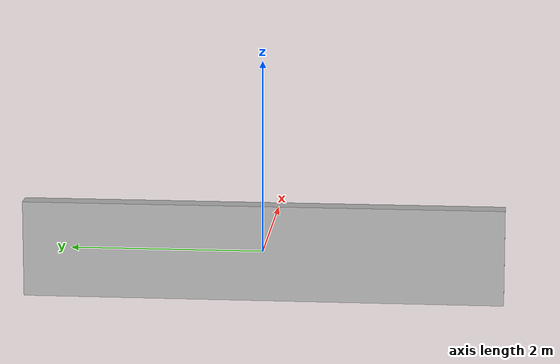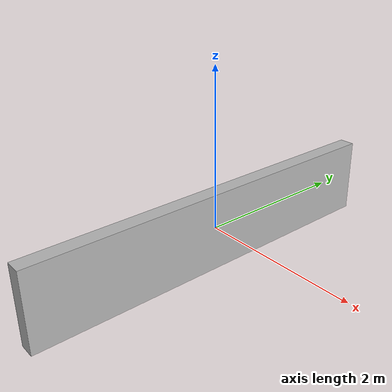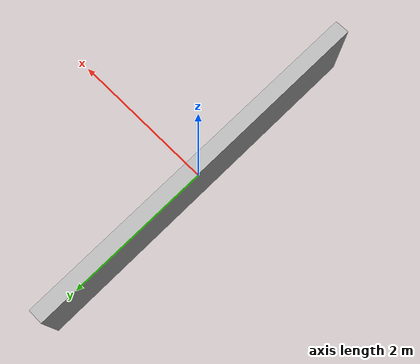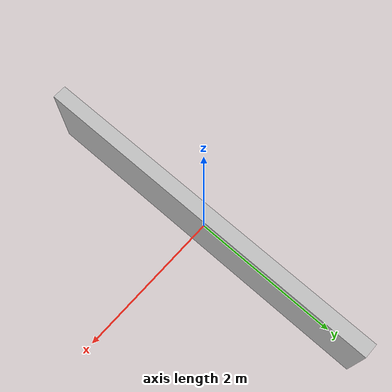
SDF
<?xml version='1.0'?>
<sdf version='1.6'>
  <model name='room_0_wall_right'>
    <static>true</static>
    <link name='link'>
      <collision name='collision'>
        <pose>0 0 0 0 0 0</pose>
        <geometry>
          <box>
            <size>0.2 4.99 1.0</size>
          </box>
        </geometry>
      </collision>
      <visual name='visual'>
        <pose>0 0 0 0 0 0</pose>
        <geometry>
          <box>
            <size>0.2 4.99 1.0</size>
          </box>
        </geometry>
      </visual>
    </link>
  </model>
</sdf>
